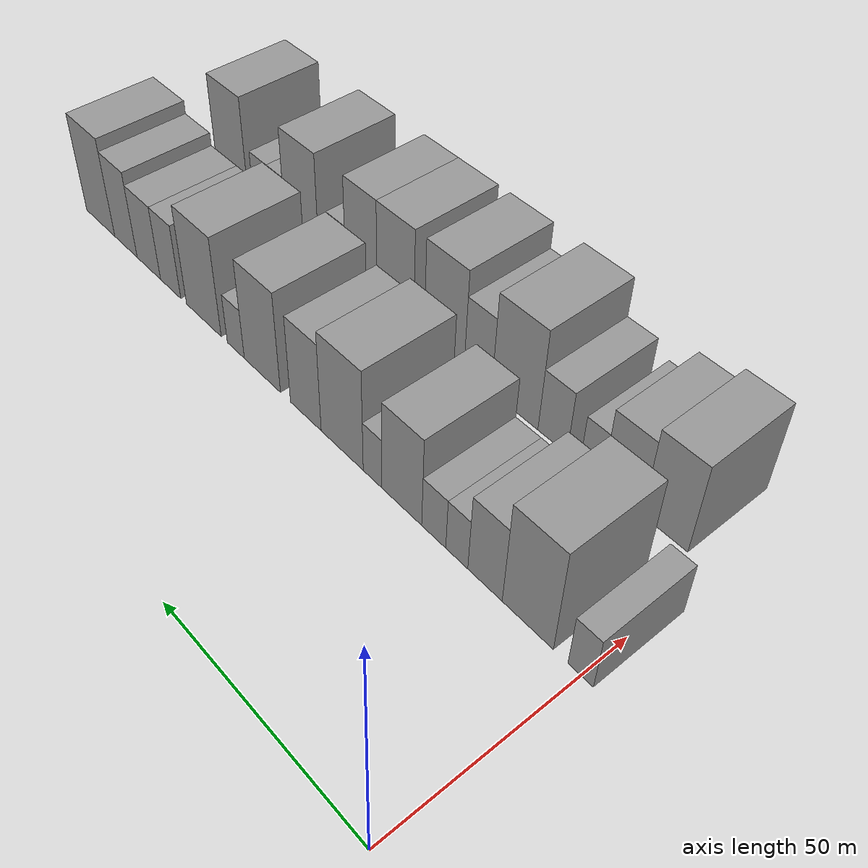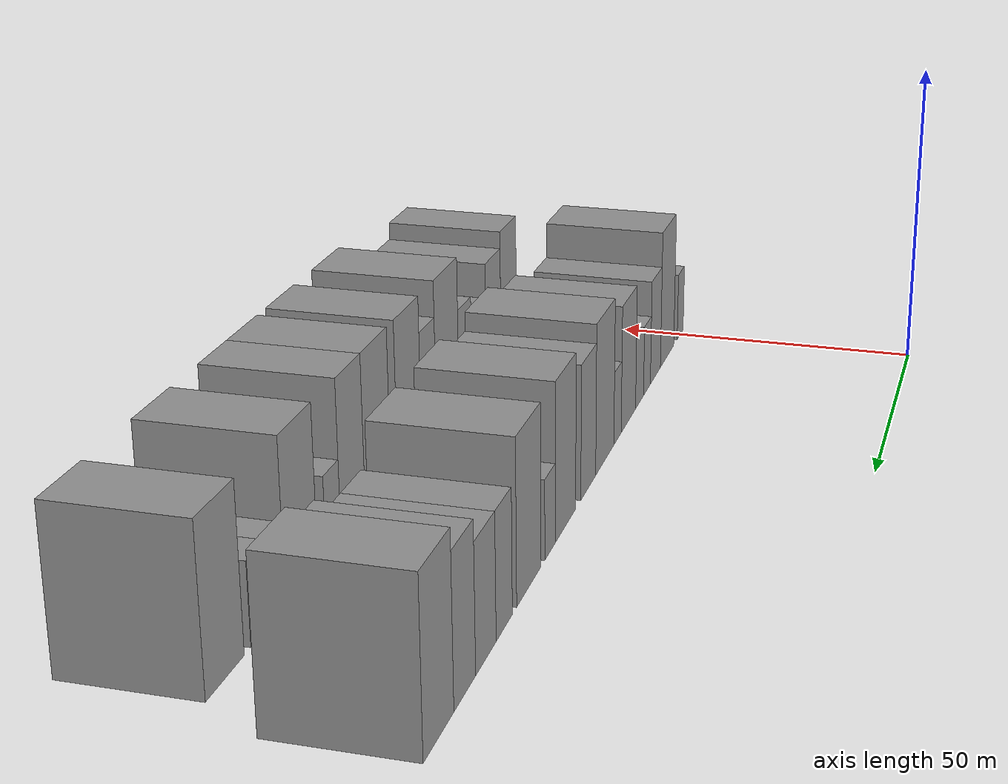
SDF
<sdf version="1.6">
 <world name="default">
  <model name="building_27">
   <static>1</static>
   <pose>50.0000 0.0869 0 0.000000 0.000000 0.000000</pose>
   <link name="link">
    <pose>0 0 6.00 0 0 0</pose>
    <collision name="collision"><geometry><box><size>20.0000 5.1384 12.0000</size></box></geometry></collision>
    <visual name="visual">
     <cast_shadows>0</cast_shadows>
     <geometry><box><size>20.0000 5.1384 12.0000</size></box></geometry>
     <material>
      <script>
       <uri>model://grey_wall/materials/scripts</uri>
       <uri>model://grey_wall/materials/textures</uri>
       <name>vrc/grey_wall</name>
      </script>
     </material>
    </visual>
   </link>
  </model>
  <model name="building_28">
   <static>1</static>
   <pose>50.0000 11.1717 0 0.000000 0.000000 0.000000</pose>
   <link name="link">
    <pose>0 0 12.00 0 0 0</pose>
    <collision name="collision"><geometry><box><size>20.0000 11.0312 24.0000</size></box></geometry></collision>
    <visual name="visual">
     <cast_shadows>0</cast_shadows>
     <geometry><box><size>20.0000 11.0312 24.0000</size></box></geometry>
     <material>
      <script>
       <uri>model://grey_wall/materials/scripts</uri>
       <uri>model://grey_wall/materials/textures</uri>
       <name>vrc/grey_wall</name>
      </script>
     </material>
    </visual>
   </link>
  </model>
  <model name="building_29">
   <static>1</static>
   <pose>50.0000 20.5993 0 0.000000 0.000000 0.000000</pose>
   <link name="link">
    <pose>0 0 9.00 0 0 0</pose>
    <collision name="collision"><geometry><box><size>20.0000 7.8240 18.0000</size></box></geometry></collision>
    <visual name="visual">
     <cast_shadows>0</cast_shadows>
     <geometry><box><size>20.0000 7.8240 18.0000</size></box></geometry>
     <material>
      <script>
       <uri>model://grey_wall/materials/scripts</uri>
       <uri>model://grey_wall/materials/textures</uri>
       <name>vrc/grey_wall</name>
      </script>
     </material>
    </visual>
   </link>
  </model>
  <model name="building_30">
   <static>1</static>
   <pose>50.0000 27.1070 0 0.000000 0.000000 0.000000</pose>
   <link name="link">
    <pose>0 0 6.00 0 0 0</pose>
    <collision name="collision"><geometry><box><size>20.0000 5.1913 12.0000</size></box></geometry></collision>
    <visual name="visual">
     <cast_shadows>0</cast_shadows>
     <geometry><box><size>20.0000 5.1913 12.0000</size></box></geometry>
     <material>
      <script>
       <uri>model://grey_wall/materials/scripts</uri>
       <uri>model://grey_wall/materials/textures</uri>
       <name>vrc/grey_wall</name>
      </script>
     </material>
    </visual>
   </link>
  </model>
  <model name="building_31">
   <static>1</static>
   <pose>50.0000 32.6259 0 0.000000 0.000000 0.000000</pose>
   <link name="link">
    <pose>0 0 6.00 0 0 0</pose>
    <collision name="collision"><geometry><box><size>20.0000 5.8464 12.0000</size></box></geometry></collision>
    <visual name="visual">
     <cast_shadows>0</cast_shadows>
     <geometry><box><size>20.0000 5.8464 12.0000</size></box></geometry>
     <material>
      <script>
       <uri>model://grey_wall/materials/scripts</uri>
       <uri>model://grey_wall/materials/textures</uri>
       <name>vrc/grey_wall</name>
      </script>
     </material>
    </visual>
   </link>
  </model>
  <model name="building_32">
   <static>1</static>
   <pose>50.0000 40.5985 0 0.000000 0.000000 0.000000</pose>
   <link name="link">
    <pose>0 0 10.50 0 0 0</pose>
    <collision name="collision"><geometry><box><size>20.0000 10.0989 21.0000</size></box></geometry></collision>
    <visual name="visual">
     <cast_shadows>0</cast_shadows>
     <geometry><box><size>20.0000 10.0989 21.0000</size></box></geometry>
     <material>
      <script>
       <uri>model://grey_wall/materials/scripts</uri>
       <uri>model://grey_wall/materials/textures</uri>
       <name>vrc/grey_wall</name>
      </script>
     </material>
    </visual>
   </link>
  </model>
  <model name="building_33">
   <static>1</static>
   <pose>50.0000 48.1005 0 0.000000 0.000000 0.000000</pose>
   <link name="link">
    <pose>0 0 6.00 0 0 0</pose>
    <collision name="collision"><geometry><box><size>20.0000 4.9049 12.0000</size></box></geometry></collision>
    <visual name="visual">
     <cast_shadows>0</cast_shadows>
     <geometry><box><size>20.0000 4.9049 12.0000</size></box></geometry>
     <material>
      <script>
       <uri>model://grey_wall/materials/scripts</uri>
       <uri>model://grey_wall/materials/textures</uri>
       <name>vrc/grey_wall</name>
      </script>
     </material>
    </visual>
   </link>
  </model>
  <model name="building_34">
   <static>1</static>
   <pose>50.0000 56.3387 0 0.000000 0.000000 0.000000</pose>
   <link name="link">
    <pose>0 0 12.00 0 0 0</pose>
    <collision name="collision"><geometry><box><size>20.0000 11.5715 24.0000</size></box></geometry></collision>
    <visual name="visual">
     <cast_shadows>0</cast_shadows>
     <geometry><box><size>20.0000 11.5715 24.0000</size></box></geometry>
     <material>
      <script>
       <uri>model://grey_wall/materials/scripts</uri>
       <uri>model://grey_wall/materials/textures</uri>
       <name>vrc/grey_wall</name>
      </script>
     </material>
    </visual>
   </link>
  </model>
  <model name="building_35">
   <static>1</static>
   <pose>50.0000 66.5732 0 0.000000 0.000000 0.000000</pose>
   <link name="link">
    <pose>0 0 10.50 0 0 0</pose>
    <collision name="collision"><geometry><box><size>20.0000 8.8975 21.0000</size></box></geometry></collision>
    <visual name="visual">
     <cast_shadows>0</cast_shadows>
     <geometry><box><size>20.0000 8.8975 21.0000</size></box></geometry>
     <material>
      <script>
       <uri>model://grey_wall/materials/scripts</uri>
       <uri>model://grey_wall/materials/textures</uri>
       <name>vrc/grey_wall</name>
      </script>
     </material>
    </visual>
   </link>
  </model>
  <model name="building_36">
   <static>1</static>
   <pose>50.0000 79.5994 0 0.000000 0.000000 0.000000</pose>
   <link name="link">
    <pose>0 0 12.00 0 0 0</pose>
    <collision name="collision"><geometry><box><size>20.0000 11.1550 24.0000</size></box></geometry></collision>
    <visual name="visual">
     <cast_shadows>0</cast_shadows>
     <geometry><box><size>20.0000 11.1550 24.0000</size></box></geometry>
     <material>
      <script>
       <uri>model://grey_wall/materials/scripts</uri>
       <uri>model://grey_wall/materials/textures</uri>
       <name>vrc/grey_wall</name>
      </script>
     </material>
    </visual>
   </link>
  </model>
  <model name="building_37">
   <static>1</static>
   <pose>50.0000 87.9173 0 0.000000 0.000000 0.000000</pose>
   <link name="link">
    <pose>0 0 6.00 0 0 0</pose>
    <collision name="collision"><geometry><box><size>20.0000 5.4807 12.0000</size></box></geometry></collision>
    <visual name="visual">
     <cast_shadows>0</cast_shadows>
     <geometry><box><size>20.0000 5.4807 12.0000</size></box></geometry>
     <material>
      <script>
       <uri>model://grey_wall/materials/scripts</uri>
       <uri>model://grey_wall/materials/textures</uri>
       <name>vrc/grey_wall</name>
      </script>
     </material>
    </visual>
   </link>
  </model>
  <model name="building_38">
   <static>1</static>
   <pose>50.0000 98.5186 0 0.000000 0.000000 0.000000</pose>
   <link name="link">
    <pose>0 0 12.00 0 0 0</pose>
    <collision name="collision"><geometry><box><size>20.0000 11.7219 24.0000</size></box></geometry></collision>
    <visual name="visual">
     <cast_shadows>0</cast_shadows>
     <geometry><box><size>20.0000 11.7219 24.0000</size></box></geometry>
     <material>
      <script>
       <uri>model://grey_wall/materials/scripts</uri>
       <uri>model://grey_wall/materials/textures</uri>
       <name>vrc/grey_wall</name>
      </script>
     </material>
    </visual>
   </link>
  </model>
  <model name="building_39">
   <static>1</static>
   <pose>50.0000 109.9865 0 0.000000 0.000000 0.000000</pose>
   <link name="link">
    <pose>0 0 9.00 0 0 0</pose>
    <collision name="collision"><geometry><box><size>20.0000 7.2139 18.0000</size></box></geometry></collision>
    <visual name="visual">
     <cast_shadows>0</cast_shadows>
     <geometry><box><size>20.0000 7.2139 18.0000</size></box></geometry>
     <material>
      <script>
       <uri>model://grey_wall/materials/scripts</uri>
       <uri>model://grey_wall/materials/textures</uri>
       <name>vrc/grey_wall</name>
      </script>
     </material>
    </visual>
   </link>
  </model>
  <model name="building_40">
   <static>1</static>
   <pose>50.0000 117.9040 0 0.000000 0.000000 0.000000</pose>
   <link name="link">
    <pose>0 0 9.00 0 0 0</pose>
    <collision name="collision"><geometry><box><size>20.0000 8.6211 18.0000</size></box></geometry></collision>
    <visual name="visual">
     <cast_shadows>0</cast_shadows>
     <geometry><box><size>20.0000 8.6211 18.0000</size></box></geometry>
     <material>
      <script>
       <uri>model://grey_wall/materials/scripts</uri>
       <uri>model://grey_wall/materials/textures</uri>
       <name>vrc/grey_wall</name>
      </script>
     </material>
    </visual>
   </link>
  </model>
  <model name="building_41">
   <static>1</static>
   <pose>50.0000 126.5039 0 0.000000 0.000000 0.000000</pose>
   <link name="link">
    <pose>0 0 10.50 0 0 0</pose>
    <collision name="collision"><geometry><box><size>20.0000 8.5786 21.0000</size></box></geometry></collision>
    <visual name="visual">
     <cast_shadows>0</cast_shadows>
     <geometry><box><size>20.0000 8.5786 21.0000</size></box></geometry>
     <material>
      <script>
       <uri>model://grey_wall/materials/scripts</uri>
       <uri>model://grey_wall/materials/textures</uri>
       <name>vrc/grey_wall</name>
      </script>
     </material>
    </visual>
   </link>
  </model>
  <model name="building_42">
   <static>1</static>
   <pose>50.0000 136.4017 0 0.000000 0.000000 0.000000</pose>
   <link name="link">
    <pose>0 0 12.00 0 0 0</pose>
    <collision name="collision"><geometry><box><size>20.0000 11.2170 24.0000</size></box></geometry></collision>
    <visual name="visual">
     <cast_shadows>0</cast_shadows>
     <geometry><box><size>20.0000 11.2170 24.0000</size></box></geometry>
     <material>
      <script>
       <uri>model://grey_wall/materials/scripts</uri>
       <uri>model://grey_wall/materials/textures</uri>
       <name>vrc/grey_wall</name>
      </script>
     </material>
    </visual>
   </link>
  </model>
  <model name="building_90">
   <static>1</static>
   <pose>79.0000 9.2190 0 0.000000 0.000000 0.000000</pose>
   <link name="link">
    <pose>0 0 10.50 0 0 0</pose>
    <collision name="collision"><geometry><box><size>20.0000 9.6931 21.0000</size></box></geometry></collision>
    <visual name="visual">
     <cast_shadows>0</cast_shadows>
     <geometry><box><size>20.0000 9.6931 21.0000</size></box></geometry>
     <material>
      <script>
       <uri>model://grey_wall/materials/scripts</uri>
       <uri>model://grey_wall/materials/textures</uri>
       <name>vrc/grey_wall</name>
      </script>
     </material>
    </visual>
   </link>
  </model>
  <model name="building_91">
   <static>1</static>
   <pose>79.0000 18.4818 0 0.000000 0.000000 0.000000</pose>
   <link name="link">
    <pose>0 0 9.00 0 0 0</pose>
    <collision name="collision"><geometry><box><size>20.0000 8.8325 18.0000</size></box></geometry></collision>
    <visual name="visual">
     <cast_shadows>0</cast_shadows>
     <geometry><box><size>20.0000 8.8325 18.0000</size></box></geometry>
     <material>
      <script>
       <uri>model://grey_wall/materials/scripts</uri>
       <uri>model://grey_wall/materials/textures</uri>
       <name>vrc/grey_wall</name>
      </script>
     </material>
    </visual>
   </link>
  </model>
  <model name="building_92">
   <static>1</static>
   <pose>79.0000 25.4806 0 0.000000 0.000000 0.000000</pose>
   <link name="link">
    <pose>0 0 6.00 0 0 0</pose>
    <collision name="collision"><geometry><box><size>20.0000 5.1649 12.0000</size></box></geometry></collision>
    <visual name="visual">
     <cast_shadows>0</cast_shadows>
     <geometry><box><size>20.0000 5.1649 12.0000</size></box></geometry>
     <material>
      <script>
       <uri>model://grey_wall/materials/scripts</uri>
       <uri>model://grey_wall/materials/textures</uri>
       <name>vrc/grey_wall</name>
      </script>
     </material>
    </visual>
   </link>
  </model>
  <model name="building_93">
   <static>1</static>
   <pose>79.0000 34.5791 0 0.000000 0.000000 0.000000</pose>
   <link name="link">
    <pose>0 0 7.50 0 0 0</pose>
    <collision name="collision"><geometry><box><size>20.0000 7.0321 15.0000</size></box></geometry></collision>
    <visual name="visual">
     <cast_shadows>0</cast_shadows>
     <geometry><box><size>20.0000 7.0321 15.0000</size></box></geometry>
     <material>
      <script>
       <uri>model://grey_wall/materials/scripts</uri>
       <uri>model://grey_wall/materials/textures</uri>
       <name>vrc/grey_wall</name>
      </script>
     </material>
    </visual>
   </link>
  </model>
  <model name="building_94">
   <static>1</static>
   <pose>79.0000 43.9708 0 0.000000 0.000000 0.000000</pose>
   <link name="link">
    <pose>0 0 12.00 0 0 0</pose>
    <collision name="collision"><geometry><box><size>20.0000 11.7512 24.0000</size></box></geometry></collision>
    <visual name="visual">
     <cast_shadows>0</cast_shadows>
     <geometry><box><size>20.0000 11.7512 24.0000</size></box></geometry>
     <material>
      <script>
       <uri>model://grey_wall/materials/scripts</uri>
       <uri>model://grey_wall/materials/textures</uri>
       <name>vrc/grey_wall</name>
      </script>
     </material>
    </visual>
   </link>
  </model>
  <model name="building_95">
   <static>1</static>
   <pose>79.0000 53.4867 0 0.000000 0.000000 0.000000</pose>
   <link name="link">
    <pose>0 0 9.00 0 0 0</pose>
    <collision name="collision"><geometry><box><size>20.0000 7.2806 18.0000</size></box></geometry></collision>
    <visual name="visual">
     <cast_shadows>0</cast_shadows>
     <geometry><box><size>20.0000 7.2806 18.0000</size></box></geometry>
     <material>
      <script>
       <uri>model://grey_wall/materials/scripts</uri>
       <uri>model://grey_wall/materials/textures</uri>
       <name>vrc/grey_wall</name>
      </script>
     </material>
    </visual>
   </link>
  </model>
  <model name="building_96">
   <static>1</static>
   <pose>79.0000 62.6591 0 0.000000 0.000000 0.000000</pose>
   <link name="link">
    <pose>0 0 12.00 0 0 0</pose>
    <collision name="collision"><geometry><box><size>20.0000 11.0643 24.0000</size></box></geometry></collision>
    <visual name="visual">
     <cast_shadows>0</cast_shadows>
     <geometry><box><size>20.0000 11.0643 24.0000</size></box></geometry>
     <material>
      <script>
       <uri>model://grey_wall/materials/scripts</uri>
       <uri>model://grey_wall/materials/textures</uri>
       <name>vrc/grey_wall</name>
      </script>
     </material>
    </visual>
   </link>
  </model>
  <model name="building_97">
   <static>1</static>
   <pose>79.0000 76.6093 0 0.000000 0.000000 0.000000</pose>
   <link name="link">
    <pose>0 0 12.00 0 0 0</pose>
    <collision name="collision"><geometry><box><size>20.0000 10.8360 24.0000</size></box></geometry></collision>
    <visual name="visual">
     <cast_shadows>0</cast_shadows>
     <geometry><box><size>20.0000 10.8360 24.0000</size></box></geometry>
     <material>
      <script>
       <uri>model://grey_wall/materials/scripts</uri>
       <uri>model://grey_wall/materials/textures</uri>
       <name>vrc/grey_wall</name>
      </script>
     </material>
    </visual>
   </link>
  </model>
  <model name="building_98">
   <static>1</static>
   <pose>79.0000 86.8647 0 0.000000 0.000000 0.000000</pose>
   <link name="link">
    <pose>0 0 12.00 0 0 0</pose>
    <collision name="collision"><geometry><box><size>20.0000 9.6748 24.0000</size></box></geometry></collision>
    <visual name="visual">
     <cast_shadows>0</cast_shadows>
     <geometry><box><size>20.0000 9.6748 24.0000</size></box></geometry>
     <material>
      <script>
       <uri>model://grey_wall/materials/scripts</uri>
       <uri>model://grey_wall/materials/textures</uri>
       <name>vrc/grey_wall</name>
      </script>
     </material>
    </visual>
   </link>
  </model>
  <model name="building_99">
   <static>1</static>
   <pose>79.0000 94.5459 0 0.000000 0.000000 0.000000</pose>
   <link name="link">
    <pose>0 0 6.00 0 0 0</pose>
    <collision name="collision"><geometry><box><size>20.0000 5.6878 12.0000</size></box></geometry></collision>
    <visual name="visual">
     <cast_shadows>0</cast_shadows>
     <geometry><box><size>20.0000 5.6878 12.0000</size></box></geometry>
     <material>
      <script>
       <uri>model://grey_wall/materials/scripts</uri>
       <uri>model://grey_wall/materials/textures</uri>
       <name>vrc/grey_wall</name>
      </script>
     </material>
    </visual>
   </link>
  </model>
  <model name="building_100">
   <static>1</static>
   <pose>79.0000 106.0434 0 0.000000 0.000000 0.000000</pose>
   <link name="link">
    <pose>0 0 12.00 0 0 0</pose>
    <collision name="collision"><geometry><box><size>20.0000 11.3072 24.0000</size></box></geometry></collision>
    <visual name="visual">
     <cast_shadows>0</cast_shadows>
     <geometry><box><size>20.0000 11.3072 24.0000</size></box></geometry>
     <material>
      <script>
       <uri>model://grey_wall/materials/scripts</uri>
       <uri>model://grey_wall/materials/textures</uri>
       <name>vrc/grey_wall</name>
      </script>
     </material>
    </visual>
   </link>
  </model>
  <model name="building_101">
   <static>1</static>
   <pose>79.0000 114.3317 0 0.000000 0.000000 0.000000</pose>
   <link name="link">
    <pose>0 0 6.00 0 0 0</pose>
    <collision name="collision"><geometry><box><size>20.0000 5.2694 12.0000</size></box></geometry></collision>
    <visual name="visual">
     <cast_shadows>0</cast_shadows>
     <geometry><box><size>20.0000 5.2694 12.0000</size></box></geometry>
     <material>
      <script>
       <uri>model://grey_wall/materials/scripts</uri>
       <uri>model://grey_wall/materials/textures</uri>
       <name>vrc/grey_wall</name>
      </script>
     </material>
    </visual>
   </link>
  </model>
  <model name="building_102">
   <static>1</static>
   <pose>79.0000 119.9506 0 0.000000 0.000000 0.000000</pose>
   <link name="link">
    <pose>0 0 6.00 0 0 0</pose>
    <collision name="collision"><geometry><box><size>20.0000 5.9684 12.0000</size></box></geometry></collision>
    <visual name="visual">
     <cast_shadows>0</cast_shadows>
     <geometry><box><size>20.0000 5.9684 12.0000</size></box></geometry>
     <material>
      <script>
       <uri>model://grey_wall/materials/scripts</uri>
       <uri>model://grey_wall/materials/textures</uri>
       <name>vrc/grey_wall</name>
      </script>
     </material>
    </visual>
   </link>
  </model>
  <model name="building_103">
   <static>1</static>
   <pose>79.0000 130.6318 0 0.000000 0.000000 0.000000</pose>
   <link name="link">
    <pose>0 0 12.00 0 0 0</pose>
    <collision name="collision"><geometry><box><size>20.0000 11.3939 24.0000</size></box></geometry></collision>
    <visual name="visual">
     <cast_shadows>0</cast_shadows>
     <geometry><box><size>20.0000 11.3939 24.0000</size></box></geometry>
     <material>
      <script>
       <uri>model://grey_wall/materials/scripts</uri>
       <uri>model://grey_wall/materials/textures</uri>
       <name>vrc/grey_wall</name>
      </script>
     </material>
    </visual>
   </link>
  </model>
 </world>
</sdf>
